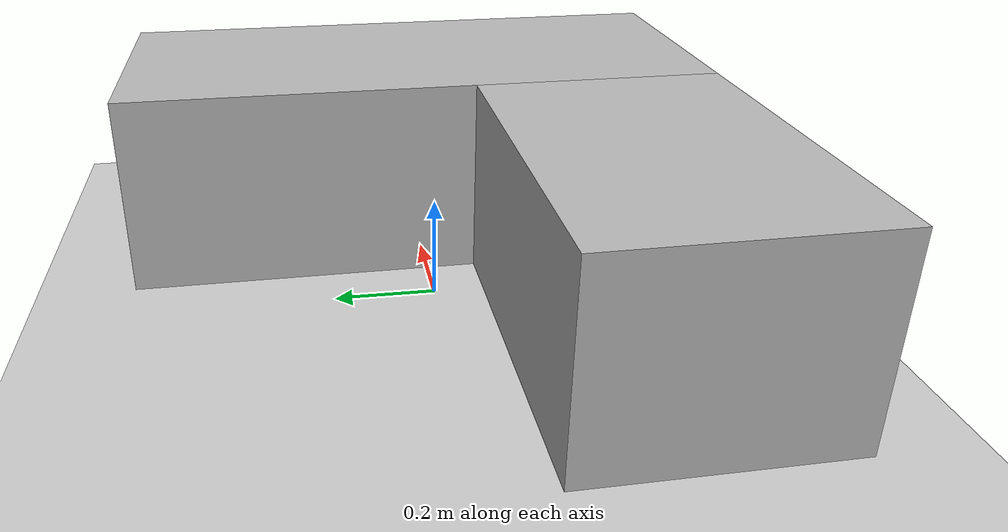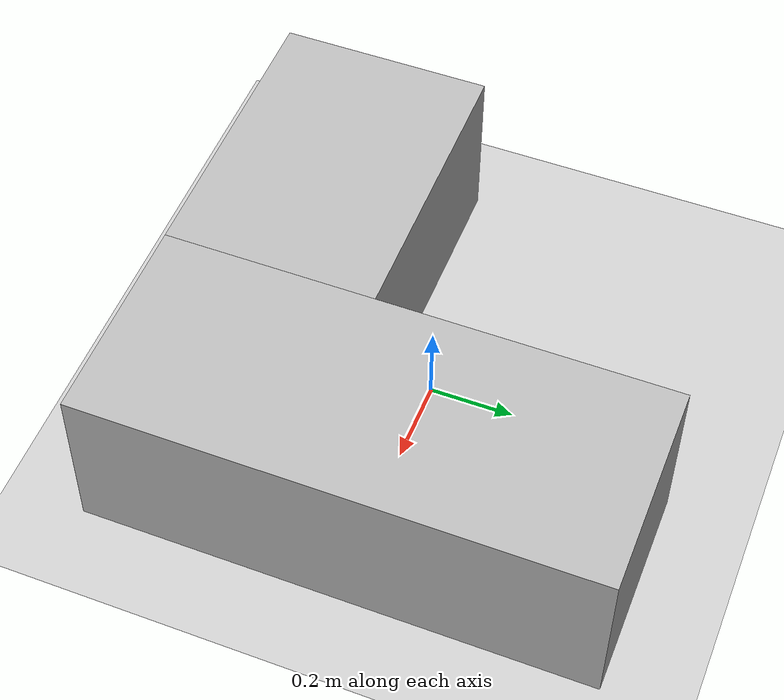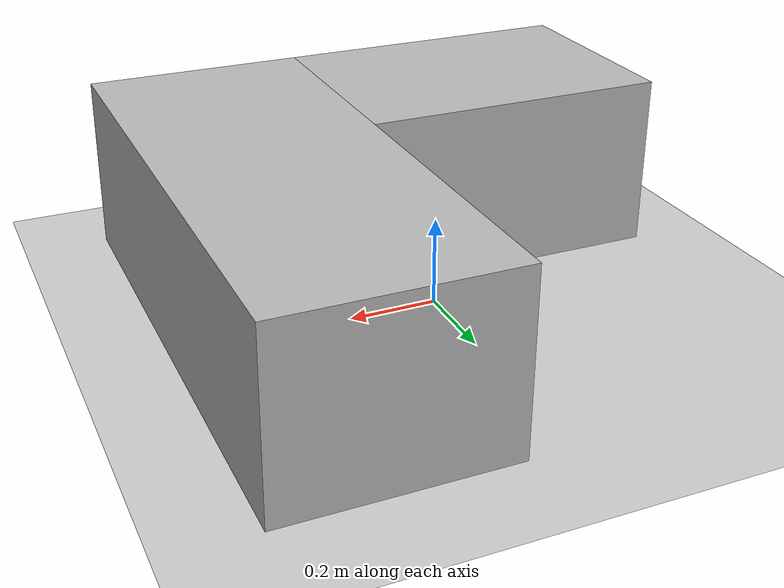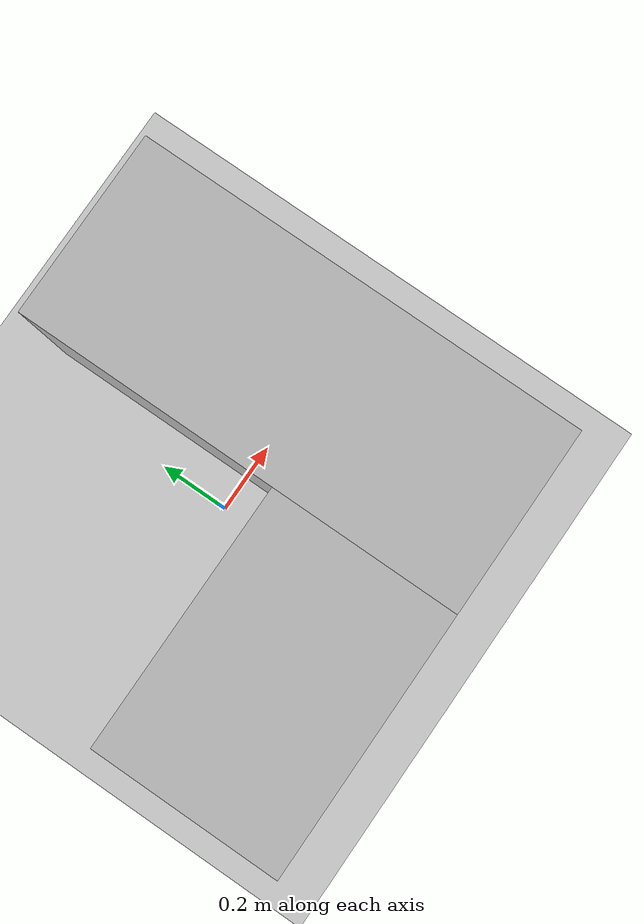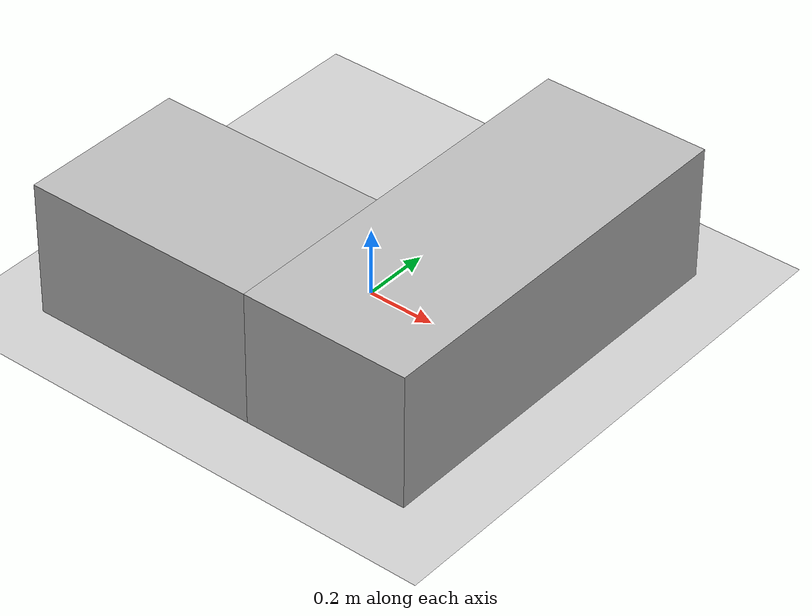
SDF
<?xml version="1.0" ?>
<sdf version="1.4">

  <world name="default">
    <include>
      <uri>model://ground_plane</uri>
    </include>

    <include>
      <uri>model://sun</uri>
    </include>

    <gravity>0 0 -9.8</gravity>
    <magnetic_field>6e-06 2.3e-05 -4.2e-05</magnetic_field>
    <atmosphere type='adiabatic'/>

    <!--physics type="ode"-->

    <include>
      <uri>model://MPNet_TableCenter</uri>
      <pose>0.35 0 0.2 0 0 0</pose>
    </include>

    <include>
      <uri>model://MPNet_TableRight</uri>
      <pose>-0.25 -0.35 0.2 0 0 1.5707963</pose>
    </include>

  </world>
</sdf>

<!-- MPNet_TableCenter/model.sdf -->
<sdf version="1.5">
  <model name="MPNet_TableCenter">
    <pose frame="world">1 -0.3 0.0 0 0 0</pose>
    <static>true</static>
    <link name="MPNet_TableCenter_link">
      <inertial>
        <mass>0.1</mass>
      </inertial>
      <visual name="MPNet_TableCenter_visual">
        <geometry>
          <box>
            <size>0.5 1.2 0.4</size>
          </box>
        </geometry>
      </visual>
      <collision name='MPNet_TableCenter_collision'>
        <laser_retro>0</laser_retro>
        <max_contacts>10</max_contacts>
        <geometry>
          <box>
            <size>0.5 1.2 0.4</size>
          </box>
        </geometry>
        <surface>
	  <friction>
            <ode>
              <mu>1</mu>
              <mu2>1</mu2>
              <fdir1>0 0 0</fdir1>
              <slip1>0</slip1>
              <slip2>0</slip2>
            </ode>
            <torsional>
              <coefficient>1</coefficient>
              <patch_radius>0</patch_radius>
              <surface_radius>0</surface_radius>
              <use_patch_radius>1</use_patch_radius>
              <ode>
                <slip>0</slip>
              </ode>
            </torsional>
          </friction>
          <bounce>
            <restitution_coefficient>0</restitution_coefficient>
            <threshold>1e+06</threshold>
          </bounce>
          <contact>
            <collide_without_contact>0</collide_without_contact>
            <collide_without_contact_bitmask>1</collide_without_contact_bitmask>
            <collide_bitmask>1</collide_bitmask>
            <ode>
              <soft_cfm>0</soft_cfm>
              <soft_erp>0.2</soft_erp>
              <kp>1e+13</kp>
              <kd>1</kd>
              <max_vel>0.01</max_vel>
              <min_depth>0</min_depth>
            </ode>
            <bullet>
              <split_impulse>1</split_impulse>
              <split_impulse_penetration_threshold>-0.01</split_impulse_penetration_threshold>
              <soft_cfm>0</soft_cfm>
              <soft_erp>0.2</soft_erp>
              <kp>1e+13</kp>
              <kd>1</kd>
            </bullet>
          </contact>
        </surface>
      </collision>
    </link>
  </model>
</sdf>

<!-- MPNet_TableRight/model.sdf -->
<sdf version="1.5">
  <model name="MPNet_TableRight">
    <pose frame="world">0.5 -1 0.0 0 0 1.5707963</pose>
    <static>true</static>
    <link name="MPNet_TableRight_link">
      <inertial>
        <mass>0.1</mass>
      </inertial>
      <visual name="MPNet_TableRight_visual">
        <geometry>
          <box>
            <size>0.5 0.7 0.4</size>
          </box>
        </geometry>
      </visual>

      <collision name='MPNet_TableRight_collision'>
        <laser_retro>0</laser_retro>
        <max_contacts>10</max_contacts>
        <geometry>
          <box>
            <size>0.5 0.7 0.4</size>
          </box>
        </geometry>
        <surface>
	  <friction>
            <ode>
              <mu>1</mu>
              <mu2>1</mu2>
              <fdir1>0 0 0</fdir1>
              <slip1>0</slip1>
              <slip2>0</slip2>
            </ode>
            <torsional>
              <coefficient>1</coefficient>
              <patch_radius>0</patch_radius>
              <surface_radius>0</surface_radius>
              <use_patch_radius>1</use_patch_radius>
              <ode>
                <slip>0</slip>
              </ode>
            </torsional>
          </friction>
          <bounce>
            <restitution_coefficient>0</restitution_coefficient>
            <threshold>1e+06</threshold>
          </bounce>
          <contact>
            <collide_without_contact>0</collide_without_contact>
            <collide_without_contact_bitmask>1</collide_without_contact_bitmask>
            <collide_bitmask>1</collide_bitmask>
            <ode>
              <soft_cfm>0</soft_cfm>
              <soft_erp>0.2</soft_erp>
              <kp>1e+13</kp>
              <kd>1</kd>
              <max_vel>0.01</max_vel>
              <min_depth>0</min_depth>
            </ode>
            <bullet>
              <split_impulse>1</split_impulse>
              <split_impulse_penetration_threshold>-0.01</split_impulse_penetration_threshold>
              <soft_cfm>0</soft_cfm>
              <soft_erp>0.2</soft_erp>
              <kp>1e+13</kp>
              <kd>1</kd>
            </bullet>
          </contact>
        </surface>
      </collision>

    </link>
  </model>
</sdf>
